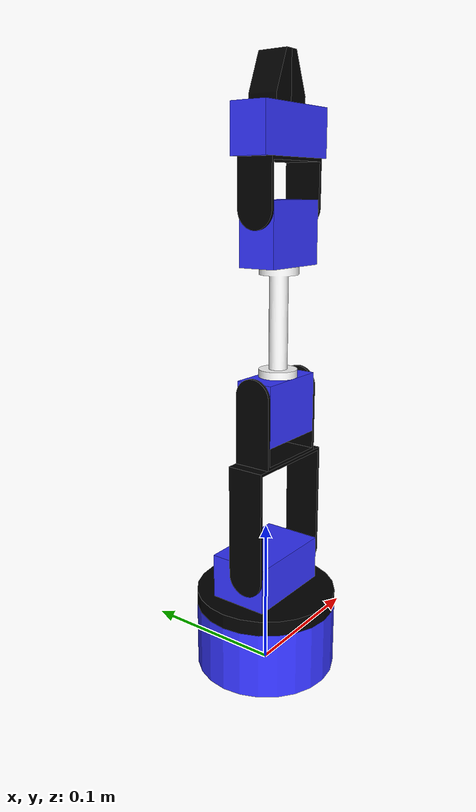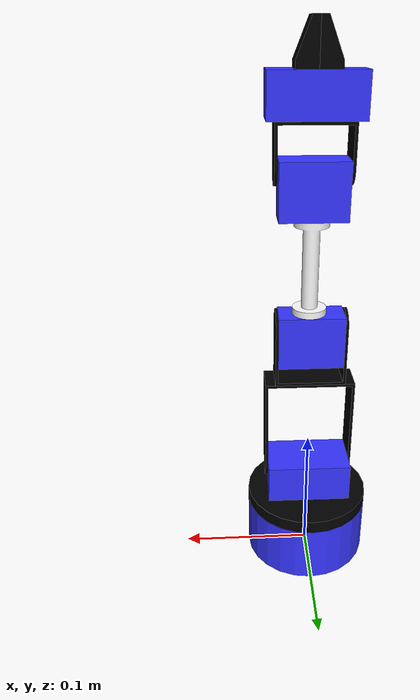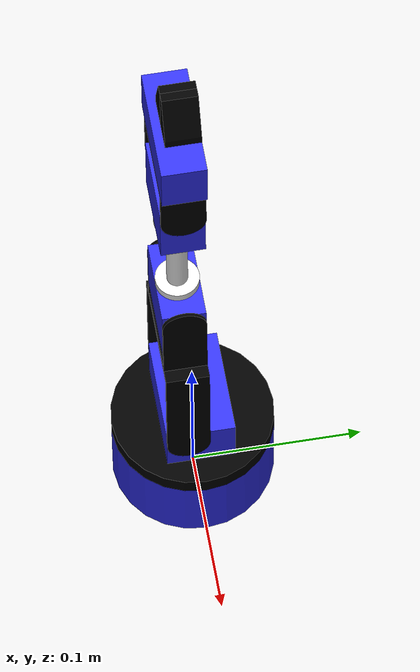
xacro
<?xml version="1.0"?>
<robot xmlns:xacro="http://www.ros.org/wiki/xacro"  name="robot_arm">

    <!-- Set control_mode to 'sim', 'real', or 'gazebo' -->
    <xacro:arg name="use_real_time" default="false"/>
    <xacro:arg name="sim_mode" default="false"/>

    <!-- Robot links and joints -->
    <xacro:include filename="robot_core.xacro" />

    <xacro:if value="$(arg use_real_time)">
        <xacro:include filename="servo_control.xacro" />
    </xacro:if>

    <xacro:unless value="$(arg use_real_time)">

        <xacro:if value="$(arg sim_mode)">
            <xacro:include filename="gazebo_control.xacro" />
        </xacro:if>

        <xacro:unless value="$(arg sim_mode)">
            <xacro:include filename="sim_control.xacro" />
        </xacro:unless>

    </xacro:unless>

</robot>

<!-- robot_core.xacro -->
<robot xmlns:xacro="http://www.ros.org/wiki/xacro">

    <xacro:include filename="inertial_macros.xacro"/>

    <material name="white">
        <color rgba="1 1 1 1"/>
    </material>

    <material name="orange">
        <color rgba="1 0.3 0.1 1"/>
    </material>

    <material name="blue">
        <color rgba="0.2 0.2 1 1"/>
    </material>

    <material name="black">
        <color rgba="0 0 0 1"/>
    </material>

    <material name="red">
        <color rgba="1 0 0 1"/>
    </material>

    <!-- ___________________________________ colors ________________________________ -->

    <link name="world">
    </link>

    <link name="base">
        <visual>
            <origin xyz="0 0 0.0225"/>
            <geometry>
                <cylinder radius="0.0475" length="0.045"/>
            </geometry>
            <material name="blue"/>
        </visual>
        <collision>
            <origin xyz="0 0 0.0225"/>
            <geometry>
                <cylinder radius="0.0475" length="0.045"/>
            </geometry>
        </collision>
        <xacro:inertial_cylinder mass="0.5" radius="0.0475" length="0.045">
            <origin xyz="0 0 0.0225" rpy="0 0 0"/>
        </xacro:inertial_cylinder>
    </link>

    <joint name="world_joint" type="fixed">
        <parent link="world"/>
        <child link="base"/>
        <origin xyz="0 0 0"/>
    </joint>

    <!-- _________________________________ Base ___________________________ -->

    <joint name="rot_base_joint" type="revolute">
        <parent link="base"/>
        <child link="rot_base"/>
        <origin xyz="0 0 0.045"/>
        <axis xyz="0 0 1"/>
        <limit lower="-${pi/2}" upper="${pi/2}" effort="100" velocity="0.2"/>
        <dynamics damping="0.1" friction="0.01"/>
    </joint>

    <link name="rot_base">
        <visual>
            <origin xyz="0 0 0.005"/>
            <geometry>
                <cylinder radius="0.0475" length="0.01"/>
            </geometry>
            <material name="black"/>
        </visual>
        <collision>
            <origin xyz="0 0 0.005"/>
            <geometry>
                <cylinder radius="0.0475" length="0.01"/>
            </geometry>
        </collision>
        <xacro:inertial_cylinder mass="0.2" radius="0.0475" length="0.01">
            <origin xyz="0 0 0.005" rpy="0 0 0"/>
        </xacro:inertial_cylinder>
    </link>

    <joint name="arm1_motor_joint" type="fixed">
        <parent link="rot_base"/>
        <child link="arm1_motor"/>
        <origin xyz="0 0 0.01"/>
    </joint>

    <link name="arm1_motor">
        <visual>
            <origin xyz="0 0 0.015"/>
            <geometry>
                <box size="0.064 0.04 0.03"/>
            </geometry>
            <material name="blue"/>
        </visual>
        <collision>
            <origin xyz="0 0 0.015"/>
            <geometry>
                <box size="0.064 0.04 0.03"/>
            </geometry>
        </collision>
        <xacro:inertial_box mass="0.5" x="0.064"  y="0.04" z="0.03">
            <origin xyz="0 0 0.015" rpy="0 0 0"/>
        </xacro:inertial_box>
    </link>

    <!-- ____________________________ Arm1 ______________________ -->

    <link name="arm1_bracket">
        <visual>
            <origin xyz="-0.068 0.0125 0.0745" rpy="${pi} 0 0"/>
            <geometry>
                <mesh filename="package://demo_arm/meshes/arm1_bracket.stl" scale="0.001 0.001 0.001"/>
            </geometry>
            <material name="black"/>
        </visual>
        <collision>
            <origin xyz="-0.068 0.0125 0.0745" rpy="${pi} 0 0"/>
            <geometry>
                <mesh filename="package://demo_arm/meshes/arm1_bracket.stl" scale="0.001 0.001 0.001"/>
            </geometry>
        </collision>
        <xacro:inertial_box mass="0.015" x="0.068"  y="0.025" z="0.087">
            <origin xyz="-0.034 0 0.0745" rpy="${pi} 0 0"/>
        </xacro:inertial_box>
    </link>

    <joint name="arm1_joint" type="revolute">
        <parent link="arm1_motor"/>
        <child link="arm1_bracket"/>
        <origin xyz="0.034 -0.0075 0.022" rpy="0 0 0"/>
        <axis xyz="1 0 0" rpy="0 0 0"/>
        <limit lower="-${pi/2}" upper="${pi/2}" effort="100" velocity="0.2"/>
        <dynamics damping="0.1" friction="0.01"/>
    </joint>

    <!-- ___________________________ Arm2 _______________________________ -->

    <link name="arm2_bracket">
        <visual>
            <origin xyz="-0.0265 -0.0125 0"/>
            <geometry>
                <mesh filename="package://demo_arm/meshes/arm2_bracket.stl" scale="0.001 0.001 0.001"/>
            </geometry>
            <material name="black"/>
        </visual>
        <collision>
            <origin xyz="-0.0265 -0.0125 0"/>
            <geometry>
                <mesh filename="package://demo_arm/meshes/arm2_bracket.stl" scale="0.001 0.001 0.001"/>
            </geometry>
        </collision>
        <xacro:inertial_box mass="0.012" x="0.053"  y="0.025" z="0.057">
            <origin xyz="0 0 0" rpy="0 0 0"/>
        </xacro:inertial_box>
    </link>

    <joint name="arm_bracket_joint" type="fixed">
        <parent link="arm1_bracket"/>
        <child link="arm2_bracket"/>
        <origin xyz="-0.034 0 0.0745"/>
    </joint>

    <link name="arm2_motor">
        <visual>
            <origin xyz="-0.026 0 -0.01"/>
            <geometry>
                <box size="0.049 0.025 0.04"/>
            </geometry>
            <material name="blue"/>
        </visual>
        <collision>
            <origin xyz="-0.026 0 -0.01"/>
            <geometry>
                <box size="0.049 0.025 0.04"/>
            </geometry>
        </collision>
        <xacro:inertial_box mass="0.5" x="0.049"  y="0.025" z="0.04">
            <origin xyz="-0.026 0 -0.01" rpy="0 0 0"/>
        </xacro:inertial_box>
    </link>

    <joint name="arm2_joint" type="revolute">
        <parent link="arm2_bracket"/>
        <child link="arm2_motor"/>
        <origin xyz="0.026 0 0.044"/>
        <axis xyz="1 0 0" rpy="0 0 0"/>
        <limit lower="-${pi/2}" upper="${pi/2}" effort="100" velocity="0.2"/>
        <dynamics damping="0.1" friction="0.01"/>
    </joint>

    <link name="arm2_stem">
        <visual>
            <origin xyz="0 0 0"/>
            <geometry>
                <mesh filename="package://demo_arm/meshes/arm2_stem.stl" scale="0.001 0.001 0.001"/>
            </geometry>
            <material name="white"/>
        </visual>
        <collision>
            <origin xyz="0 0 0"/>
            <geometry>
                <mesh filename="package://demo_arm/meshes/arm2_stem.stl" scale="0.001 0.001 0.001"/>
            </geometry>
        </collision>
        <xacro:inertial_cylinder mass="0.2" radius="0.006" length="0.07">
            <origin xyz="0 0 0.035" rpy="0 0 0"/>
        </xacro:inertial_cylinder>
    </link>

    <joint name="arm2_stem_joint" type="fixed">
        <parent link="arm2_motor"/>
        <child link="arm2_stem"/>
        <origin xyz="-0.0245 0 0.01"/>
    </joint>

    <!-- _____________________________ Arm3 ______________________________ -->

    <link name="arm3_motor">
        <visual>
            <origin xyz="0 0 0.02"/>
            <geometry>
                <box size="0.048 0.025 0.04"/>
            </geometry>
            <material name="blue"/>
        </visual>
        <collision>
            <origin xyz="0 0 0.02"/>
            <geometry>
                <box size="0.048 0.025 0.04"/>
            </geometry>
        </collision>
        <xacro:inertial_box mass="0.5" x="0.048"  y="0.025" z="0.04">
            <origin xyz="0 0 0.02" rpy="0 0 0"/>
        </xacro:inertial_box>
    </link>

    <joint name="arm3_motor_joint" type="fixed">
        <parent link="arm2_stem"/>
        <child link="arm3_motor"/>
        <origin xyz="0 0 0.07"/>
    </joint>

    <link name="arm3_bracket">
        <visual>
            <origin xyz="-0.05 0.0125 0.0295" rpy="${pi} 0 0"/>
            <geometry>
                <mesh filename="package://demo_arm/meshes/arm3_bracket.stl" scale="0.001 0.001 0.001"/>
            </geometry>
            <material name="black"/>
        </visual>
        <collision>
            <origin xyz="-0.05 0.0125 0.0295" rpy="${pi} 0 0"/>
            <geometry>
                <mesh filename="package://demo_arm/meshes/arm3_bracket.stl" scale="0.001 0.001 0.001"/>
            </geometry>
        </collision>
        <xacro:inertial_box mass="0.008" x="0.053"  y="0.025" z="0.042">
            <origin xyz="-0.025 0 0.0295" rpy="${pi} 0 0"/>
        </xacro:inertial_box>
    </link>

    <joint name="arm3_joint" type="revolute">
        <parent link="arm3_motor"/>
        <child link="arm3_bracket"/>
        <origin xyz="0.024 0 0.035"/>
        <axis xyz="1 0 0" rpy="0 0 0"/>
        <limit lower="-${pi/2}" upper="${pi/2}" effort="100" velocity="0.2"/>
        <dynamics damping="0.1" friction="0.01"/>
    </joint>

    <!-- ______________________________ Claw ___________________________________ -->

    <link name="claw_base">
        <visual>
            <origin xyz="0 0 0.015"/>
            <geometry>
                <box size="0.065 0.025 0.03"/>
            </geometry>
            <material name="blue"/>
        </visual>
        <collision>
            <origin xyz="0 0 0.015"/>
            <geometry>
                <box size="0.065 0.025 0.03"/>
            </geometry>
        </collision>
        <xacro:inertial_box mass="0.5" x="0.065"  y="0.025" z="0.03">
            <origin xyz="0 0 0.015" rpy="0 0 0"/>
        </xacro:inertial_box>
    </link>

    <joint name="claw_base_joint" type="fixed">
        <parent link="arm3_bracket"/>
        <child link="claw_base"/>
        <origin xyz="-0.024 0 0.0295"/>
    </joint>

    <link name="left_claw">
        <visual>
            <origin xyz="0 0.01 0" rpy="${pi/2} 0 0"/>
            <geometry>
                <mesh filename="package://demo_arm/meshes/right_claw.stl" scale="0.001 0.001 0.001"/>
            </geometry>
            <material name="black"/>
        </visual>
        <collision>
            <origin xyz="0 0.01 0" rpy="${pi/2} 0 0"/>
            <geometry>
                <mesh filename="package://demo_arm/meshes/right_claw.stl" scale="0.001 0.001 0.001"/>
            </geometry>
        </collision>
        <xacro:inertial_box mass="0.008" x="0.015"  y="0.02" z="0.03">
            <origin xyz="0.0075 0 0.015" rpy="${pi/2} 0 0"/>
        </xacro:inertial_box>
    </link>

    <joint name="left_claw_joint" type="prismatic">
        <parent link="claw_base"/>
        <child link="left_claw"/>
        <origin xyz="0 0.0025 0.03"/>
        <axis xyz="1 0 0"/>
        <limit lower="0" upper="0.015" effort="100" velocity="0.2"/>
        <dynamics damping="0.1" friction="0.01"/>
    </joint>

    <link name="right_claw">
        <visual>
            <origin xyz="-0.015 0.01 0" rpy="${pi/2} 0 0"/>
            <geometry>
                <mesh filename="package://demo_arm/meshes/left_claw.stl" scale="0.001 0.001 0.001"/>
            </geometry>
            <material name="black"/>
        </visual>
        <collision>
            <origin xyz="-0.015 0.01 0" rpy="${pi/2} 0 0"/>
            <geometry>
                <mesh filename="package://demo_arm/meshes/left_claw.stl" scale="0.001 0.001 0.001"/>
            </geometry>
        </collision>
        <xacro:inertial_box mass="0.008" x="0.015"  y="0.02" z="0.03">
            <origin xyz="-0.0075 0 0.015" rpy="${pi/2} 0 0"/>
        </xacro:inertial_box>
    </link>

    <joint name="right_claw_joint" type="prismatic">
        <parent link="claw_base"/>
        <child link="right_claw"/>
        <origin xyz="0 0.0025 0.03" rpy="0 0 0"/>
        <axis xyz="1 0 0"/>
        <limit lower="-0.015" upper="0" effort="100" velocity="0.2"/>
        <mimic joint="left_claw_joint" multiplier="-1.0"/>
        <dynamics damping="0.1" friction="0.01"/>
    </joint>

</robot>

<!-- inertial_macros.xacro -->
<robot xmlns:xacro="http://www.ros.org/wiki/xacro">

    <xacro:macro name="inertial_box" params="mass x y z *origin">
        <inertial>
            <xacro:insert_block name="origin"/>
            <mass value="${mass}" />
            <inertia ixx="${(1/12) * mass * (y*y+z*z)}" ixy="0.0" ixz="0.0"
                    iyy="${(1/12) * mass * (x*x+z*z)}" iyz="0.0"
                    izz="${(1/12) * mass * (x*x+y*y)}" />
        </inertial>
    </xacro:macro>

    <xacro:macro name="inertial_cylinder" params="mass radius length *origin">
        <inertial>
            <xacro:insert_block name="origin"/>
            <mass value="${mass}" />
            <inertia ixx="${(1/12) * mass * (3*radius*radius + length*length)}" ixy="0.0" ixz="0.0"
                    iyy="${(1/12) * mass * (3*radius*radius + length*length)}" iyz="0.0"
                    izz="${(1/2) * mass * (radius*radius)}" />
        </inertial>
    </xacro:macro>

    <xacro:macro name="inertial_sphere" params="mass radius *origin">
        <inertial>
            <xacro:insert_block name="origin"/>
            <mass value="${mass}" />
            <inertia ixx="${(2/5) * mass * (radius*radius)}" ixy="0.0" ixz="0.0"
                     iyy="${(2/5) * mass * (radius*radius)}" iyz="0.0"
                     izz="${(2/5) * mass * (radius*radius)}" />
        </inertial>
    </xacro:macro>

    <xacro:macro name="inertial_bracket" params="mass length height width *origin">
        <inertial>
            <xacro:insert_block name="origin"/>
            <mass value="${mass}"/>
            <inertia ixx="${0.0}" ixy="0.0" ixz="0.0"
                    iyy="${0.0}" iyz="0.0"
                    izz="${0.0}" />
        </inertial>
    </xacro:macro>

</robot>
